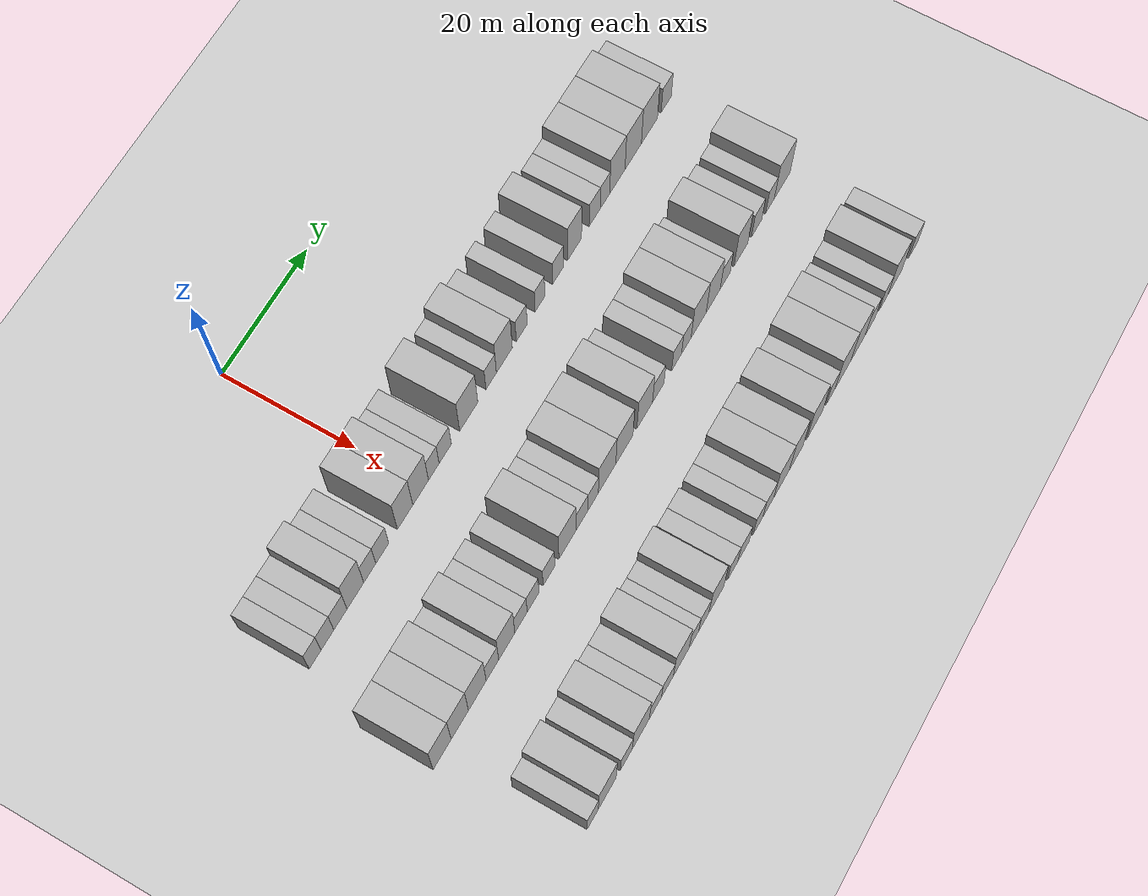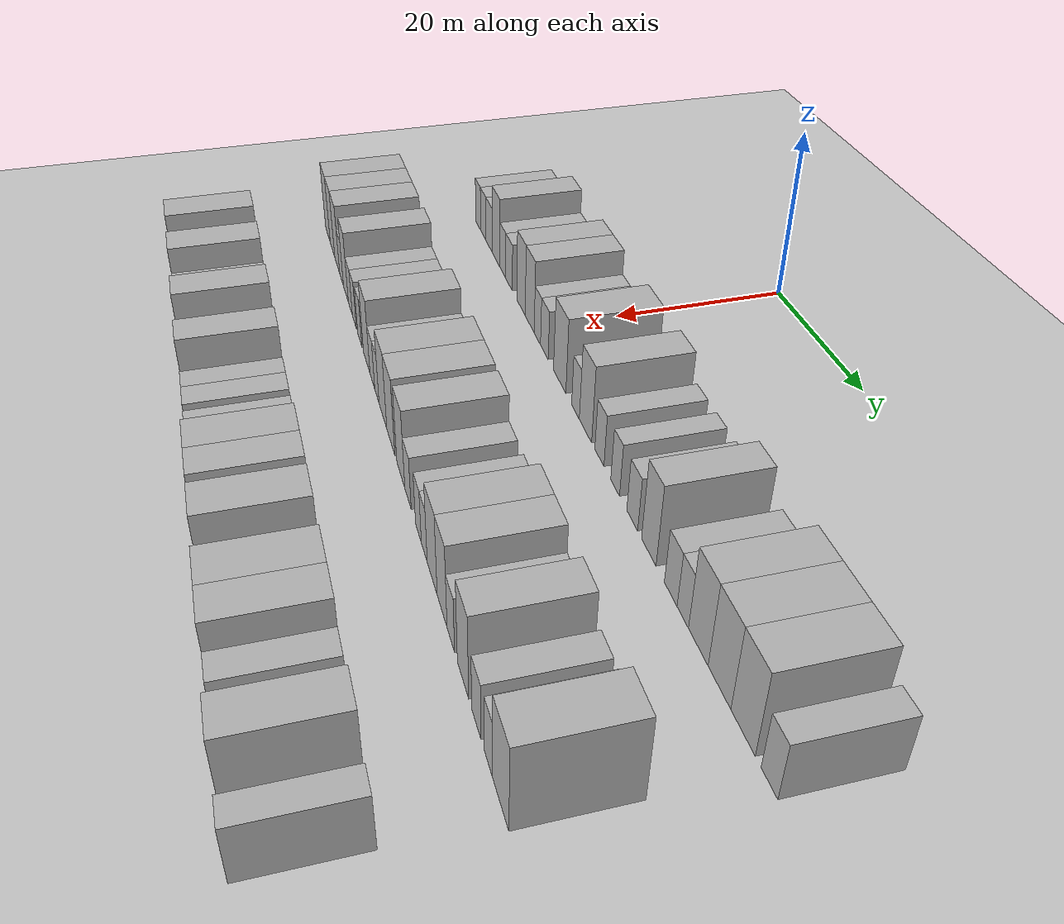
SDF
<sdf version="1.6">
 <world name="default">
  <include><name>ground_plane_1</name><uri>model://HANNAS_ground_plane</uri></include>
  <model name="building_80">
   <static>1</static>
   <pose>25.0000 -25.1136 0 0.000000 0.000000 0.000000</pose>
   <link name="link">
    <pose>0 0 3.00 0 0 0</pose>
    <collision name="collision"><geometry><box><size>10.0000 2.6231 6.0000</size></box></geometry></collision>
    <visual name="visual">
     <cast_shadows>0</cast_shadows>
     <geometry><box><size>10.0000 2.6231 6.0000</size></box></geometry>
     <material>
      <script>
       <uri>model://HANNAS_wall/materials/scripts</uri>
       <uri>model://HANNAS_wall/materials/textures</uri>
       <name>vrc/HANNAS_wall</name>
      </script>
     </material>
    </visual>
   </link>
  </model>
  <model name="building_81">
   <static>1</static>
   <pose>25.0000 -22.3759 0 0.000000 0.000000 0.000000</pose>
   <link name="link">
    <pose>0 0 3.00 0 0 0</pose>
    <collision name="collision"><geometry><box><size>10.0000 2.8523 6.0000</size></box></geometry></collision>
    <visual name="visual">
     <cast_shadows>0</cast_shadows>
     <geometry><box><size>10.0000 2.8523 6.0000</size></box></geometry>
     <material>
      <script>
       <uri>model://HANNAS_wall/materials/scripts</uri>
       <uri>model://HANNAS_wall/materials/textures</uri>
       <name>vrc/HANNAS_wall</name>
      </script>
     </material>
    </visual>
   </link>
  </model>
  <model name="building_82">
   <static>1</static>
   <pose>25.0000 -19.4616 0 0.000000 0.000000 0.000000</pose>
   <link name="link">
    <pose>0 0 3.00 0 0 0</pose>
    <collision name="collision"><geometry><box><size>10.0000 2.9764 6.0000</size></box></geometry></collision>
    <visual name="visual">
     <cast_shadows>0</cast_shadows>
     <geometry><box><size>10.0000 2.9764 6.0000</size></box></geometry>
     <material>
      <script>
       <uri>model://HANNAS_wall/materials/scripts</uri>
       <uri>model://HANNAS_wall/materials/textures</uri>
       <name>vrc/HANNAS_wall</name>
      </script>
     </material>
    </visual>
   </link>
  </model>
  <model name="building_83">
   <static>1</static>
   <pose>25.0000 -16.0742 0 0.000000 0.000000 0.000000</pose>
   <link name="link">
    <pose>0 0 4.50 0 0 0</pose>
    <collision name="collision"><geometry><box><size>10.0000 3.7984 9.0000</size></box></geometry></collision>
    <visual name="visual">
     <cast_shadows>0</cast_shadows>
     <geometry><box><size>10.0000 3.7984 9.0000</size></box></geometry>
     <material>
      <script>
       <uri>model://HANNAS_wall/materials/scripts</uri>
       <uri>model://HANNAS_wall/materials/textures</uri>
       <name>vrc/HANNAS_wall</name>
      </script>
     </material>
    </visual>
   </link>
  </model>
  <model name="building_84">
   <static>1</static>
   <pose>25.0000 -12.7927 0 0.000000 0.000000 0.000000</pose>
   <link name="link">
    <pose>0 0 3.00 0 0 0</pose>
    <collision name="collision"><geometry><box><size>10.0000 2.7646 6.0000</size></box></geometry></collision>
    <visual name="visual">
     <cast_shadows>0</cast_shadows>
     <geometry><box><size>10.0000 2.7646 6.0000</size></box></geometry>
     <material>
      <script>
       <uri>model://HANNAS_wall/materials/scripts</uri>
       <uri>model://HANNAS_wall/materials/textures</uri>
       <name>vrc/HANNAS_wall</name>
      </script>
     </material>
    </visual>
   </link>
  </model>
  <model name="building_85">
   <static>1</static>
   <pose>25.0000 -9.9157 0 0.000000 0.000000 0.000000</pose>
   <link name="link">
    <pose>0 0 3.00 0 0 0</pose>
    <collision name="collision"><geometry><box><size>10.0000 2.9894 6.0000</size></box></geometry></collision>
    <visual name="visual">
     <cast_shadows>0</cast_shadows>
     <geometry><box><size>10.0000 2.9894 6.0000</size></box></geometry>
     <material>
      <script>
       <uri>model://HANNAS_wall/materials/scripts</uri>
       <uri>model://HANNAS_wall/materials/textures</uri>
       <name>vrc/HANNAS_wall</name>
      </script>
     </material>
    </visual>
   </link>
  </model>
  <model name="building_86">
   <static>1</static>
   <pose>25.0000 -4.6189 0 0.000000 0.000000 0.000000</pose>
   <link name="link">
    <pose>0 0 4.50 0 0 0</pose>
    <collision name="collision"><geometry><box><size>10.0000 3.6042 9.0000</size></box></geometry></collision>
    <visual name="visual">
     <cast_shadows>0</cast_shadows>
     <geometry><box><size>10.0000 3.6042 9.0000</size></box></geometry>
     <material>
      <script>
       <uri>model://HANNAS_wall/materials/scripts</uri>
       <uri>model://HANNAS_wall/materials/textures</uri>
       <name>vrc/HANNAS_wall</name>
      </script>
     </material>
    </visual>
   </link>
  </model>
  <model name="building_87">
   <static>1</static>
   <pose>25.0000 -0.9588 0 0.000000 0.000000 0.000000</pose>
   <link name="link">
    <pose>0 0 4.50 0 0 0</pose>
    <collision name="collision"><geometry><box><size>10.0000 3.7160 9.0000</size></box></geometry></collision>
    <visual name="visual">
     <cast_shadows>0</cast_shadows>
     <geometry><box><size>10.0000 3.7160 9.0000</size></box></geometry>
     <material>
      <script>
       <uri>model://HANNAS_wall/materials/scripts</uri>
       <uri>model://HANNAS_wall/materials/textures</uri>
       <name>vrc/HANNAS_wall</name>
      </script>
     </material>
    </visual>
   </link>
  </model>
  <model name="building_88">
   <static>1</static>
   <pose>25.0000 2.1606 0 0.000000 0.000000 0.000000</pose>
   <link name="link">
    <pose>0 0 3.00 0 0 0</pose>
    <collision name="collision"><geometry><box><size>10.0000 2.5228 6.0000</size></box></geometry></collision>
    <visual name="visual">
     <cast_shadows>0</cast_shadows>
     <geometry><box><size>10.0000 2.5228 6.0000</size></box></geometry>
     <material>
      <script>
       <uri>model://HANNAS_wall/materials/scripts</uri>
       <uri>model://HANNAS_wall/materials/textures</uri>
       <name>vrc/HANNAS_wall</name>
      </script>
     </material>
    </visual>
   </link>
  </model>
  <model name="building_89">
   <static>1</static>
   <pose>25.0000 4.8927 0 0.000000 0.000000 0.000000</pose>
   <link name="link">
    <pose>0 0 3.00 0 0 0</pose>
    <collision name="collision"><geometry><box><size>10.0000 2.9413 6.0000</size></box></geometry></collision>
    <visual name="visual">
     <cast_shadows>0</cast_shadows>
     <geometry><box><size>10.0000 2.9413 6.0000</size></box></geometry>
     <material>
      <script>
       <uri>model://HANNAS_wall/materials/scripts</uri>
       <uri>model://HANNAS_wall/materials/textures</uri>
       <name>vrc/HANNAS_wall</name>
      </script>
     </material>
    </visual>
   </link>
  </model>
  <model name="building_90">
   <static>1</static>
   <pose>25.0000 10.5723 0 0.000000 0.000000 0.000000</pose>
   <link name="link">
    <pose>0 0 4.50 0 0 0</pose>
    <collision name="collision"><geometry><box><size>10.0000 4.4178 9.0000</size></box></geometry></collision>
    <visual name="visual">
     <cast_shadows>0</cast_shadows>
     <geometry><box><size>10.0000 4.4178 9.0000</size></box></geometry>
     <material>
      <script>
       <uri>model://HANNAS_wall/materials/scripts</uri>
       <uri>model://HANNAS_wall/materials/textures</uri>
       <name>vrc/HANNAS_wall</name>
      </script>
     </material>
    </visual>
   </link>
  </model>
  <model name="building_91">
   <static>1</static>
   <pose>25.0000 16.0663 0 0.000000 0.000000 0.000000</pose>
   <link name="link">
    <pose>0 0 3.00 0 0 0</pose>
    <collision name="collision"><geometry><box><size>10.0000 2.5703 6.0000</size></box></geometry></collision>
    <visual name="visual">
     <cast_shadows>0</cast_shadows>
     <geometry><box><size>10.0000 2.5703 6.0000</size></box></geometry>
     <material>
      <script>
       <uri>model://HANNAS_wall/materials/scripts</uri>
       <uri>model://HANNAS_wall/materials/textures</uri>
       <name>vrc/HANNAS_wall</name>
      </script>
     </material>
    </visual>
   </link>
  </model>
  <model name="building_92">
   <static>1</static>
   <pose>25.0000 19.3270 0 0.000000 0.000000 0.000000</pose>
   <link name="link">
    <pose>0 0 4.50 0 0 0</pose>
    <collision name="collision"><geometry><box><size>10.0000 3.9511 9.0000</size></box></geometry></collision>
    <visual name="visual">
     <cast_shadows>0</cast_shadows>
     <geometry><box><size>10.0000 3.9511 9.0000</size></box></geometry>
     <material>
      <script>
       <uri>model://HANNAS_wall/materials/scripts</uri>
       <uri>model://HANNAS_wall/materials/textures</uri>
       <name>vrc/HANNAS_wall</name>
      </script>
     </material>
    </visual>
   </link>
  </model>
  <model name="building_93">
   <static>1</static>
   <pose>25.0000 23.6728 0 0.000000 0.000000 0.000000</pose>
   <link name="link">
    <pose>0 0 3.00 0 0 0</pose>
    <collision name="collision"><geometry><box><size>10.0000 2.7406 6.0000</size></box></geometry></collision>
    <visual name="visual">
     <cast_shadows>0</cast_shadows>
     <geometry><box><size>10.0000 2.7406 6.0000</size></box></geometry>
     <material>
      <script>
       <uri>model://HANNAS_wall/materials/scripts</uri>
       <uri>model://HANNAS_wall/materials/textures</uri>
       <name>vrc/HANNAS_wall</name>
      </script>
     </material>
    </visual>
   </link>
  </model>
  <model name="building_94">
   <static>1</static>
   <pose>25.0000 28.2843 0 0.000000 0.000000 0.000000</pose>
   <link name="link">
    <pose>0 0 3.00 0 0 0</pose>
    <collision name="collision"><geometry><box><size>10.0000 2.4824 6.0000</size></box></geometry></collision>
    <visual name="visual">
     <cast_shadows>0</cast_shadows>
     <geometry><box><size>10.0000 2.4824 6.0000</size></box></geometry>
     <material>
      <script>
       <uri>model://HANNAS_wall/materials/scripts</uri>
       <uri>model://HANNAS_wall/materials/textures</uri>
       <name>vrc/HANNAS_wall</name>
      </script>
     </material>
    </visual>
   </link>
  </model>
  <model name="building_95">
   <static>1</static>
   <pose>25.0000 32.9653 0 0.000000 0.000000 0.000000</pose>
   <link name="link">
    <pose>0 0 3.00 0 0 0</pose>
    <collision name="collision"><geometry><box><size>10.0000 2.8797 6.0000</size></box></geometry></collision>
    <visual name="visual">
     <cast_shadows>0</cast_shadows>
     <geometry><box><size>10.0000 2.8797 6.0000</size></box></geometry>
     <material>
      <script>
       <uri>model://HANNAS_wall/materials/scripts</uri>
       <uri>model://HANNAS_wall/materials/textures</uri>
       <name>vrc/HANNAS_wall</name>
      </script>
     </material>
    </visual>
   </link>
  </model>
  <model name="building_96">
   <static>1</static>
   <pose>25.0000 37.2083 0 0.000000 0.000000 0.000000</pose>
   <link name="link">
    <pose>0 0 4.50 0 0 0</pose>
    <collision name="collision"><geometry><box><size>10.0000 3.6063 9.0000</size></box></geometry></collision>
    <visual name="visual">
     <cast_shadows>0</cast_shadows>
     <geometry><box><size>10.0000 3.6063 9.0000</size></box></geometry>
     <material>
      <script>
       <uri>model://HANNAS_wall/materials/scripts</uri>
       <uri>model://HANNAS_wall/materials/textures</uri>
       <name>vrc/HANNAS_wall</name>
      </script>
     </material>
    </visual>
   </link>
  </model>
  <model name="building_97">
   <static>1</static>
   <pose>25.0000 42.4687 0 0.000000 0.000000 0.000000</pose>
   <link name="link">
    <pose>0 0 3.00 0 0 0</pose>
    <collision name="collision"><geometry><box><size>10.0000 2.9145 6.0000</size></box></geometry></collision>
    <visual name="visual">
     <cast_shadows>0</cast_shadows>
     <geometry><box><size>10.0000 2.9145 6.0000</size></box></geometry>
     <material>
      <script>
       <uri>model://HANNAS_wall/materials/scripts</uri>
       <uri>model://HANNAS_wall/materials/textures</uri>
       <name>vrc/HANNAS_wall</name>
      </script>
     </material>
    </visual>
   </link>
  </model>
  <model name="building_98">
   <static>1</static>
   <pose>25.0000 45.1825 0 0.000000 0.000000 0.000000</pose>
   <link name="link">
    <pose>0 0 3.00 0 0 0</pose>
    <collision name="collision"><geometry><box><size>10.0000 2.5129 6.0000</size></box></geometry></collision>
    <visual name="visual">
     <cast_shadows>0</cast_shadows>
     <geometry><box><size>10.0000 2.5129 6.0000</size></box></geometry>
     <material>
      <script>
       <uri>model://HANNAS_wall/materials/scripts</uri>
       <uri>model://HANNAS_wall/materials/textures</uri>
       <name>vrc/HANNAS_wall</name>
      </script>
     </material>
    </visual>
   </link>
  </model>
  <model name="building_99">
   <static>1</static>
   <pose>25.0000 48.4916 0 0.000000 0.000000 0.000000</pose>
   <link name="link">
    <pose>0 0 4.50 0 0 0</pose>
    <collision name="collision"><geometry><box><size>10.0000 4.1053 9.0000</size></box></geometry></collision>
    <visual name="visual">
     <cast_shadows>0</cast_shadows>
     <geometry><box><size>10.0000 4.1053 9.0000</size></box></geometry>
     <material>
      <script>
       <uri>model://HANNAS_wall/materials/scripts</uri>
       <uri>model://HANNAS_wall/materials/textures</uri>
       <name>vrc/HANNAS_wall</name>
      </script>
     </material>
    </visual>
   </link>
  </model>
  <model name="building_100">
   <static>1</static>
   <pose>25.0000 52.7604 0 0.000000 0.000000 0.000000</pose>
   <link name="link">
    <pose>0 0 4.50 0 0 0</pose>
    <collision name="collision"><geometry><box><size>10.0000 4.4323 9.0000</size></box></geometry></collision>
    <visual name="visual">
     <cast_shadows>0</cast_shadows>
     <geometry><box><size>10.0000 4.4323 9.0000</size></box></geometry>
     <material>
      <script>
       <uri>model://HANNAS_wall/materials/scripts</uri>
       <uri>model://HANNAS_wall/materials/textures</uri>
       <name>vrc/HANNAS_wall</name>
      </script>
     </material>
    </visual>
   </link>
  </model>
  <model name="building_101">
   <static>1</static>
   <pose>25.0000 57.1780 0 0.000000 0.000000 0.000000</pose>
   <link name="link">
    <pose>0 0 4.50 0 0 0</pose>
    <collision name="collision"><geometry><box><size>10.0000 4.4029 9.0000</size></box></geometry></collision>
    <visual name="visual">
     <cast_shadows>0</cast_shadows>
     <geometry><box><size>10.0000 4.4029 9.0000</size></box></geometry>
     <material>
      <script>
       <uri>model://HANNAS_wall/materials/scripts</uri>
       <uri>model://HANNAS_wall/materials/textures</uri>
       <name>vrc/HANNAS_wall</name>
      </script>
     </material>
    </visual>
   </link>
  </model>
  <model name="building_102">
   <static>1</static>
   <pose>25.0000 61.7750 0 0.000000 0.000000 0.000000</pose>
   <link name="link">
    <pose>0 0 3.00 0 0 0</pose>
    <collision name="collision"><geometry><box><size>10.0000 2.7911 6.0000</size></box></geometry></collision>
    <visual name="visual">
     <cast_shadows>0</cast_shadows>
     <geometry><box><size>10.0000 2.7911 6.0000</size></box></geometry>
     <material>
      <script>
       <uri>model://HANNAS_wall/materials/scripts</uri>
       <uri>model://HANNAS_wall/materials/textures</uri>
       <name>vrc/HANNAS_wall</name>
      </script>
     </material>
    </visual>
   </link>
  </model>
  <model name="building_260">
   <static>1</static>
   <pose>44.0000 -27.3362 0 0.000000 0.000000 0.000000</pose>
   <link name="link">
    <pose>0 0 4.50 0 0 0</pose>
    <collision name="collision"><geometry><box><size>10.0000 4.0826 9.0000</size></box></geometry></collision>
    <visual name="visual">
     <cast_shadows>0</cast_shadows>
     <geometry><box><size>10.0000 4.0826 9.0000</size></box></geometry>
     <material>
      <script>
       <uri>model://HANNAS_wall/materials/scripts</uri>
       <uri>model://HANNAS_wall/materials/textures</uri>
       <name>vrc/HANNAS_wall</name>
      </script>
     </material>
    </visual>
   </link>
  </model>
  <model name="building_261">
   <static>1</static>
   <pose>44.0000 -23.3222 0 0.000000 0.000000 0.000000</pose>
   <link name="link">
    <pose>0 0 4.50 0 0 0</pose>
    <collision name="collision"><geometry><box><size>10.0000 3.9454 9.0000</size></box></geometry></collision>
    <visual name="visual">
     <cast_shadows>0</cast_shadows>
     <geometry><box><size>10.0000 3.9454 9.0000</size></box></geometry>
     <material>
      <script>
       <uri>model://HANNAS_wall/materials/scripts</uri>
       <uri>model://HANNAS_wall/materials/textures</uri>
       <name>vrc/HANNAS_wall</name>
      </script>
     </material>
    </visual>
   </link>
  </model>
  <model name="building_262">
   <static>1</static>
   <pose>44.0000 -19.3012 0 0.000000 0.000000 0.000000</pose>
   <link name="link">
    <pose>0 0 4.50 0 0 0</pose>
    <collision name="collision"><geometry><box><size>10.0000 4.0967 9.0000</size></box></geometry></collision>
    <visual name="visual">
     <cast_shadows>0</cast_shadows>
     <geometry><box><size>10.0000 4.0967 9.0000</size></box></geometry>
     <material>
      <script>
       <uri>model://HANNAS_wall/materials/scripts</uri>
       <uri>model://HANNAS_wall/materials/textures</uri>
       <name>vrc/HANNAS_wall</name>
      </script>
     </material>
    </visual>
   </link>
  </model>
  <model name="building_263">
   <static>1</static>
   <pose>44.0000 -15.7885 0 0.000000 0.000000 0.000000</pose>
   <link name="link">
    <pose>0 0 3.00 0 0 0</pose>
    <collision name="collision"><geometry><box><size>10.0000 2.9286 6.0000</size></box></geometry></collision>
    <visual name="visual">
     <cast_shadows>0</cast_shadows>
     <geometry><box><size>10.0000 2.9286 6.0000</size></box></geometry>
     <material>
      <script>
       <uri>model://HANNAS_wall/materials/scripts</uri>
       <uri>model://HANNAS_wall/materials/textures</uri>
       <name>vrc/HANNAS_wall</name>
      </script>
     </material>
    </visual>
   </link>
  </model>
  <model name="building_264">
   <static>1</static>
   <pose>44.0000 -12.4292 0 0.000000 0.000000 0.000000</pose>
   <link name="link">
    <pose>0 0 4.50 0 0 0</pose>
    <collision name="collision"><geometry><box><size>10.0000 3.7901 9.0000</size></box></geometry></collision>
    <visual name="visual">
     <cast_shadows>0</cast_shadows>
     <geometry><box><size>10.0000 3.7901 9.0000</size></box></geometry>
     <material>
      <script>
       <uri>model://HANNAS_wall/materials/scripts</uri>
       <uri>model://HANNAS_wall/materials/textures</uri>
       <name>vrc/HANNAS_wall</name>
      </script>
     </material>
    </visual>
   </link>
  </model>
  <model name="building_265">
   <static>1</static>
   <pose>44.0000 -9.0709 0 0.000000 0.000000 0.000000</pose>
   <link name="link">
    <pose>0 0 3.00 0 0 0</pose>
    <collision name="collision"><geometry><box><size>10.0000 2.9265 6.0000</size></box></geometry></collision>
    <visual name="visual">
     <cast_shadows>0</cast_shadows>
     <geometry><box><size>10.0000 2.9265 6.0000</size></box></geometry>
     <material>
      <script>
       <uri>model://HANNAS_wall/materials/scripts</uri>
       <uri>model://HANNAS_wall/materials/textures</uri>
       <name>vrc/HANNAS_wall</name>
      </script>
     </material>
    </visual>
   </link>
  </model>
  <model name="building_266">
   <static>1</static>
   <pose>44.0000 -6.1941 0 0.000000 0.000000 0.000000</pose>
   <link name="link">
    <pose>0 0 3.00 0 0 0</pose>
    <collision name="collision"><geometry><box><size>10.0000 2.8271 6.0000</size></box></geometry></collision>
    <visual name="visual">
     <cast_shadows>0</cast_shadows>
     <geometry><box><size>10.0000 2.8271 6.0000</size></box></geometry>
     <material>
      <script>
       <uri>model://HANNAS_wall/materials/scripts</uri>
       <uri>model://HANNAS_wall/materials/textures</uri>
       <name>vrc/HANNAS_wall</name>
      </script>
     </material>
    </visual>
   </link>
  </model>
  <model name="building_267">
   <static>1</static>
   <pose>44.0000 -2.3669 0 0.000000 0.000000 0.000000</pose>
   <link name="link">
    <pose>0 0 3.00 0 0 0</pose>
    <collision name="collision"><geometry><box><size>10.0000 2.8273 6.0000</size></box></geometry></collision>
    <visual name="visual">
     <cast_shadows>0</cast_shadows>
     <geometry><box><size>10.0000 2.8273 6.0000</size></box></geometry>
     <material>
      <script>
       <uri>model://HANNAS_wall/materials/scripts</uri>
       <uri>model://HANNAS_wall/materials/textures</uri>
       <name>vrc/HANNAS_wall</name>
      </script>
     </material>
    </visual>
   </link>
  </model>
  <model name="building_268">
   <static>1</static>
   <pose>44.0000 2.1466 0 0.000000 0.000000 0.000000</pose>
   <link name="link">
    <pose>0 0 4.50 0 0 0</pose>
    <collision name="collision"><geometry><box><size>10.0000 4.1997 9.0000</size></box></geometry></collision>
    <visual name="visual">
     <cast_shadows>0</cast_shadows>
     <geometry><box><size>10.0000 4.1997 9.0000</size></box></geometry>
     <material>
      <script>
       <uri>model://HANNAS_wall/materials/scripts</uri>
       <uri>model://HANNAS_wall/materials/textures</uri>
       <name>vrc/HANNAS_wall</name>
      </script>
     </material>
    </visual>
   </link>
  </model>
  <model name="building_269">
   <static>1</static>
   <pose>44.0000 5.7174 0 0.000000 0.000000 0.000000</pose>
   <link name="link">
    <pose>0 0 3.00 0 0 0</pose>
    <collision name="collision"><geometry><box><size>10.0000 2.9419 6.0000</size></box></geometry></collision>
    <visual name="visual">
     <cast_shadows>0</cast_shadows>
     <geometry><box><size>10.0000 2.9419 6.0000</size></box></geometry>
     <material>
      <script>
       <uri>model://HANNAS_wall/materials/scripts</uri>
       <uri>model://HANNAS_wall/materials/textures</uri>
       <name>vrc/HANNAS_wall</name>
      </script>
     </material>
    </visual>
   </link>
  </model>
  <model name="building_270">
   <static>1</static>
   <pose>44.0000 8.4803 0 0.000000 0.000000 0.000000</pose>
   <link name="link">
    <pose>0 0 3.00 0 0 0</pose>
    <collision name="collision"><geometry><box><size>10.0000 2.5839 6.0000</size></box></geometry></collision>
    <visual name="visual">
     <cast_shadows>0</cast_shadows>
     <geometry><box><size>10.0000 2.5839 6.0000</size></box></geometry>
     <material>
      <script>
       <uri>model://HANNAS_wall/materials/scripts</uri>
       <uri>model://HANNAS_wall/materials/textures</uri>
       <name>vrc/HANNAS_wall</name>
      </script>
     </material>
    </visual>
   </link>
  </model>
  <model name="building_271">
   <static>1</static>
   <pose>44.0000 11.9617 0 0.000000 0.000000 0.000000</pose>
   <link name="link">
    <pose>0 0 4.50 0 0 0</pose>
    <collision name="collision"><geometry><box><size>10.0000 4.3789 9.0000</size></box></geometry></collision>
    <visual name="visual">
     <cast_shadows>0</cast_shadows>
     <geometry><box><size>10.0000 4.3789 9.0000</size></box></geometry>
     <material>
      <script>
       <uri>model://HANNAS_wall/materials/scripts</uri>
       <uri>model://HANNAS_wall/materials/textures</uri>
       <name>vrc/HANNAS_wall</name>
      </script>
     </material>
    </visual>
   </link>
  </model>
  <model name="building_272">
   <static>1</static>
   <pose>44.0000 16.3287 0 0.000000 0.000000 0.000000</pose>
   <link name="link">
    <pose>0 0 4.50 0 0 0</pose>
    <collision name="collision"><geometry><box><size>10.0000 4.3550 9.0000</size></box></geometry></collision>
    <visual name="visual">
     <cast_shadows>0</cast_shadows>
     <geometry><box><size>10.0000 4.3550 9.0000</size></box></geometry>
     <material>
      <script>
       <uri>model://HANNAS_wall/materials/scripts</uri>
       <uri>model://HANNAS_wall/materials/textures</uri>
       <name>vrc/HANNAS_wall</name>
      </script>
     </material>
    </visual>
   </link>
  </model>
  <model name="building_273">
   <static>1</static>
   <pose>44.0000 21.5159 0 0.000000 0.000000 0.000000</pose>
   <link name="link">
    <pose>0 0 4.50 0 0 0</pose>
    <collision name="collision"><geometry><box><size>10.0000 4.0196 9.0000</size></box></geometry></collision>
    <visual name="visual">
     <cast_shadows>0</cast_shadows>
     <geometry><box><size>10.0000 4.0196 9.0000</size></box></geometry>
     <material>
      <script>
       <uri>model://HANNAS_wall/materials/scripts</uri>
       <uri>model://HANNAS_wall/materials/textures</uri>
       <name>vrc/HANNAS_wall</name>
      </script>
     </material>
    </visual>
   </link>
  </model>
  <model name="building_274">
   <static>1</static>
   <pose>44.0000 25.0243 0 0.000000 0.000000 0.000000</pose>
   <link name="link">
    <pose>0 0 3.00 0 0 0</pose>
    <collision name="collision"><geometry><box><size>10.0000 2.9971 6.0000</size></box></geometry></collision>
    <visual name="visual">
     <cast_shadows>0</cast_shadows>
     <geometry><box><size>10.0000 2.9971 6.0000</size></box></geometry>
     <material>
      <script>
       <uri>model://HANNAS_wall/materials/scripts</uri>
       <uri>model://HANNAS_wall/materials/textures</uri>
       <name>vrc/HANNAS_wall</name>
      </script>
     </material>
    </visual>
   </link>
  </model>
  <model name="building_275">
   <static>1</static>
   <pose>44.0000 29.8168 0 0.000000 0.000000 0.000000</pose>
   <link name="link">
    <pose>0 0 3.00 0 0 0</pose>
    <collision name="collision"><geometry><box><size>10.0000 2.5878 6.0000</size></box></geometry></collision>
    <visual name="visual">
     <cast_shadows>0</cast_shadows>
     <geometry><box><size>10.0000 2.5878 6.0000</size></box></geometry>
     <material>
      <script>
       <uri>model://HANNAS_wall/materials/scripts</uri>
       <uri>model://HANNAS_wall/materials/textures</uri>
       <name>vrc/HANNAS_wall</name>
      </script>
     </material>
    </visual>
   </link>
  </model>
  <model name="building_276">
   <static>1</static>
   <pose>44.0000 32.3701 0 0.000000 0.000000 0.000000</pose>
   <link name="link">
    <pose>0 0 3.00 0 0 0</pose>
    <collision name="collision"><geometry><box><size>10.0000 2.5187 6.0000</size></box></geometry></collision>
    <visual name="visual">
     <cast_shadows>0</cast_shadows>
     <geometry><box><size>10.0000 2.5187 6.0000</size></box></geometry>
     <material>
      <script>
       <uri>model://HANNAS_wall/materials/scripts</uri>
       <uri>model://HANNAS_wall/materials/textures</uri>
       <name>vrc/HANNAS_wall</name>
      </script>
     </material>
    </visual>
   </link>
  </model>
  <model name="building_277">
   <static>1</static>
   <pose>44.0000 35.6614 0 0.000000 0.000000 0.000000</pose>
   <link name="link">
    <pose>0 0 4.50 0 0 0</pose>
    <collision name="collision"><geometry><box><size>10.0000 4.0640 9.0000</size></box></geometry></collision>
    <visual name="visual">
     <cast_shadows>0</cast_shadows>
     <geometry><box><size>10.0000 4.0640 9.0000</size></box></geometry>
     <material>
      <script>
       <uri>model://HANNAS_wall/materials/scripts</uri>
       <uri>model://HANNAS_wall/materials/textures</uri>
       <name>vrc/HANNAS_wall</name>
      </script>
     </material>
    </visual>
   </link>
  </model>
  <model name="building_278">
   <static>1</static>
   <pose>44.0000 39.5808 0 0.000000 0.000000 0.000000</pose>
   <link name="link">
    <pose>0 0 4.50 0 0 0</pose>
    <collision name="collision"><geometry><box><size>10.0000 3.7749 9.0000</size></box></geometry></collision>
    <visual name="visual">
     <cast_shadows>0</cast_shadows>
     <geometry><box><size>10.0000 3.7749 9.0000</size></box></geometry>
     <material>
      <script>
       <uri>model://HANNAS_wall/materials/scripts</uri>
       <uri>model://HANNAS_wall/materials/textures</uri>
       <name>vrc/HANNAS_wall</name>
      </script>
     </material>
    </visual>
   </link>
  </model>
  <model name="building_279">
   <static>1</static>
   <pose>44.0000 42.8353 0 0.000000 0.000000 0.000000</pose>
   <link name="link">
    <pose>0 0 3.00 0 0 0</pose>
    <collision name="collision"><geometry><box><size>10.0000 2.7340 6.0000</size></box></geometry></collision>
    <visual name="visual">
     <cast_shadows>0</cast_shadows>
     <geometry><box><size>10.0000 2.7340 6.0000</size></box></geometry>
     <material>
      <script>
       <uri>model://HANNAS_wall/materials/scripts</uri>
       <uri>model://HANNAS_wall/materials/textures</uri>
       <name>vrc/HANNAS_wall</name>
      </script>
     </material>
    </visual>
   </link>
  </model>
  <model name="building_280">
   <static>1</static>
   <pose>44.0000 47.1238 0 0.000000 0.000000 0.000000</pose>
   <link name="link">
    <pose>0 0 4.50 0 0 0</pose>
    <collision name="collision"><geometry><box><size>10.0000 3.8430 9.0000</size></box></geometry></collision>
    <visual name="visual">
     <cast_shadows>0</cast_shadows>
     <geometry><box><size>10.0000 3.8430 9.0000</size></box></geometry>
     <material>
      <script>
       <uri>model://HANNAS_wall/materials/scripts</uri>
       <uri>model://HANNAS_wall/materials/textures</uri>
       <name>vrc/HANNAS_wall</name>
      </script>
     </material>
    </visual>
   </link>
  </model>
  <model name="building_281">
   <static>1</static>
   <pose>44.0000 51.4929 0 0.000000 0.000000 0.000000</pose>
   <link name="link">
    <pose>0 0 3.00 0 0 0</pose>
    <collision name="collision"><geometry><box><size>10.0000 2.8951 6.0000</size></box></geometry></collision>
    <visual name="visual">
     <cast_shadows>0</cast_shadows>
     <geometry><box><size>10.0000 2.8951 6.0000</size></box></geometry>
     <material>
      <script>
       <uri>model://HANNAS_wall/materials/scripts</uri>
       <uri>model://HANNAS_wall/materials/textures</uri>
       <name>vrc/HANNAS_wall</name>
      </script>
     </material>
    </visual>
   </link>
  </model>
  <model name="building_282">
   <static>1</static>
   <pose>44.0000 55.1789 0 0.000000 0.000000 0.000000</pose>
   <link name="link">
    <pose>0 0 3.00 0 0 0</pose>
    <collision name="collision"><geometry><box><size>10.0000 2.4768 6.0000</size></box></geometry></collision>
    <visual name="visual">
     <cast_shadows>0</cast_shadows>
     <geometry><box><size>10.0000 2.4768 6.0000</size></box></geometry>
     <material>
      <script>
       <uri>model://HANNAS_wall/materials/scripts</uri>
       <uri>model://HANNAS_wall/materials/textures</uri>
       <name>vrc/HANNAS_wall</name>
      </script>
     </material>
    </visual>
   </link>
  </model>
  <model name="building_283">
   <static>1</static>
   <pose>44.0000 58.6474 0 0.000000 0.000000 0.000000</pose>
   <link name="link">
    <pose>0 0 4.50 0 0 0</pose>
    <collision name="collision"><geometry><box><size>10.0000 4.4602 9.0000</size></box></geometry></collision>
    <visual name="visual">
     <cast_shadows>0</cast_shadows>
     <geometry><box><size>10.0000 4.4602 9.0000</size></box></geometry>
     <material>
      <script>
       <uri>model://HANNAS_wall/materials/scripts</uri>
       <uri>model://HANNAS_wall/materials/textures</uri>
       <name>vrc/HANNAS_wall</name>
      </script>
     </material>
    </visual>
   </link>
  </model>
  <model name="building_434">
   <static>1</static>
   <pose>63.0000 -25.2057 0 0.000000 0.000000 0.000000</pose>
   <link name="link">
    <pose>0 0 3.00 0 0 0</pose>
    <collision name="collision"><geometry><box><size>10.0000 2.5960 6.0000</size></box></geometry></collision>
    <visual name="visual">
     <cast_shadows>0</cast_shadows>
     <geometry><box><size>10.0000 2.5960 6.0000</size></box></geometry>
     <material>
      <script>
       <uri>model://HANNAS_wall/materials/scripts</uri>
       <uri>model://HANNAS_wall/materials/textures</uri>
       <name>vrc/HANNAS_wall</name>
      </script>
     </material>
    </visual>
   </link>
  </model>
  <model name="building_435">
   <static>1</static>
   <pose>63.0000 -21.8024 0 0.000000 0.000000 0.000000</pose>
   <link name="link">
    <pose>0 0 4.50 0 0 0</pose>
    <collision name="collision"><geometry><box><size>10.0000 4.2107 9.0000</size></box></geometry></collision>
    <visual name="visual">
     <cast_shadows>0</cast_shadows>
     <geometry><box><size>10.0000 4.2107 9.0000</size></box></geometry>
     <material>
      <script>
       <uri>model://HANNAS_wall/materials/scripts</uri>
       <uri>model://HANNAS_wall/materials/textures</uri>
       <name>vrc/HANNAS_wall</name>
      </script>
     </material>
    </visual>
   </link>
  </model>
  <model name="building_436">
   <static>1</static>
   <pose>63.0000 -17.2670 0 0.000000 0.000000 0.000000</pose>
   <link name="link">
    <pose>0 0 3.00 0 0 0</pose>
    <collision name="collision"><geometry><box><size>10.0000 2.8600 6.0000</size></box></geometry></collision>
    <visual name="visual">
     <cast_shadows>0</cast_shadows>
     <geometry><box><size>10.0000 2.8600 6.0000</size></box></geometry>
     <material>
      <script>
       <uri>model://HANNAS_wall/materials/scripts</uri>
       <uri>model://HANNAS_wall/materials/textures</uri>
       <name>vrc/HANNAS_wall</name>
      </script>
     </material>
    </visual>
   </link>
  </model>
  <model name="building_437">
   <static>1</static>
   <pose>63.0000 -13.7755 0 0.000000 0.000000 0.000000</pose>
   <link name="link">
    <pose>0 0 4.50 0 0 0</pose>
    <collision name="collision"><geometry><box><size>10.0000 4.1230 9.0000</size></box></geometry></collision>
    <visual name="visual">
     <cast_shadows>0</cast_shadows>
     <geometry><box><size>10.0000 4.1230 9.0000</size></box></geometry>
     <material>
      <script>
       <uri>model://HANNAS_wall/materials/scripts</uri>
       <uri>model://HANNAS_wall/materials/textures</uri>
       <name>vrc/HANNAS_wall</name>
      </script>
     </material>
    </visual>
   </link>
  </model>
  <model name="building_438">
   <static>1</static>
   <pose>63.0000 -10.2452 0 0.000000 0.000000 0.000000</pose>
   <link name="link">
    <pose>0 0 3.00 0 0 0</pose>
    <collision name="collision"><geometry><box><size>10.0000 2.9377 6.0000</size></box></geometry></collision>
    <visual name="visual">
     <cast_shadows>0</cast_shadows>
     <geometry><box><size>10.0000 2.9377 6.0000</size></box></geometry>
     <material>
      <script>
       <uri>model://HANNAS_wall/materials/scripts</uri>
       <uri>model://HANNAS_wall/materials/textures</uri>
       <name>vrc/HANNAS_wall</name>
      </script>
     </material>
    </visual>
   </link>
  </model>
  <model name="building_439">
   <static>1</static>
   <pose>63.0000 -7.3107 0 0.000000 0.000000 0.000000</pose>
   <link name="link">
    <pose>0 0 3.00 0 0 0</pose>
    <collision name="collision"><geometry><box><size>10.0000 2.9314 6.0000</size></box></geometry></collision>
    <visual name="visual">
     <cast_shadows>0</cast_shadows>
     <geometry><box><size>10.0000 2.9314 6.0000</size></box></geometry>
     <material>
      <script>
       <uri>model://HANNAS_wall/materials/scripts</uri>
       <uri>model://HANNAS_wall/materials/textures</uri>
       <name>vrc/HANNAS_wall</name>
      </script>
     </material>
    </visual>
   </link>
  </model>
  <model name="building_440">
   <static>1</static>
   <pose>63.0000 -3.8833 0 0.000000 0.000000 0.000000</pose>
   <link name="link">
    <pose>0 0 4.50 0 0 0</pose>
    <collision name="collision"><geometry><box><size>10.0000 3.9234 9.0000</size></box></geometry></collision>
    <visual name="visual">
     <cast_shadows>0</cast_shadows>
     <geometry><box><size>10.0000 3.9234 9.0000</size></box></geometry>
     <material>
      <script>
       <uri>model://HANNAS_wall/materials/scripts</uri>
       <uri>model://HANNAS_wall/materials/textures</uri>
       <name>vrc/HANNAS_wall</name>
      </script>
     </material>
    </visual>
   </link>
  </model>
  <model name="building_441">
   <static>1</static>
   <pose>63.0000 -0.7138 0 0.000000 0.000000 0.000000</pose>
   <link name="link">
    <pose>0 0 3.00 0 0 0</pose>
    <collision name="collision"><geometry><box><size>10.0000 2.4156 6.0000</size></box></geometry></collision>
    <visual name="visual">
     <cast_shadows>0</cast_shadows>
     <geometry><box><size>10.0000 2.4156 6.0000</size></box></geometry>
     <material>
      <script>
       <uri>model://HANNAS_wall/materials/scripts</uri>
       <uri>model://HANNAS_wall/materials/textures</uri>
       <name>vrc/HANNAS_wall</name>
      </script>
     </material>
    </visual>
   </link>
  </model>
  <model name="building_442">
   <static>1</static>
   <pose>63.0000 1.7585 0 0.000000 0.000000 0.000000</pose>
   <link name="link">
    <pose>0 0 3.00 0 0 0</pose>
    <collision name="collision"><geometry><box><size>10.0000 2.5289 6.0000</size></box></geometry></collision>
    <visual name="visual">
     <cast_shadows>0</cast_shadows>
     <geometry><box><size>10.0000 2.5289 6.0000</size></box></geometry>
     <material>
      <script>
       <uri>model://HANNAS_wall/materials/scripts</uri>
       <uri>model://HANNAS_wall/materials/textures</uri>
       <name>vrc/HANNAS_wall</name>
      </script>
     </material>
    </visual>
   </link>
  </model>
  <model name="building_443">
   <static>1</static>
   <pose>63.0000 4.9178 0 0.000000 0.000000 0.000000</pose>
   <link name="link">
    <pose>0 0 4.50 0 0 0</pose>
    <collision name="collision"><geometry><box><size>10.0000 3.7897 9.0000</size></box></geometry></collision>
    <visual name="visual">
     <cast_shadows>0</cast_shadows>
     <geometry><box><size>10.0000 3.7897 9.0000</size></box></geometry>
     <material>
      <script>
       <uri>model://HANNAS_wall/materials/scripts</uri>
       <uri>model://HANNAS_wall/materials/textures</uri>
       <name>vrc/HANNAS_wall</name>
      </script>
     </material>
    </visual>
   </link>
  </model>
  <model name="building_444">
   <static>1</static>
   <pose>63.0000 9.1336 0 0.000000 0.000000 0.000000</pose>
   <link name="link">
    <pose>0 0 3.00 0 0 0</pose>
    <collision name="collision"><geometry><box><size>10.0000 2.6420 6.0000</size></box></geometry></collision>
    <visual name="visual">
     <cast_shadows>0</cast_shadows>
     <geometry><box><size>10.0000 2.6420 6.0000</size></box></geometry>
     <material>
      <script>
       <uri>model://HANNAS_wall/materials/scripts</uri>
       <uri>model://HANNAS_wall/materials/textures</uri>
       <name>vrc/HANNAS_wall</name>
      </script>
     </material>
    </visual>
   </link>
  </model>
  <model name="building_445">
   <static>1</static>
   <pose>63.0000 11.9358 0 0.000000 0.000000 0.000000</pose>
   <link name="link">
    <pose>0 0 3.00 0 0 0</pose>
    <collision name="collision"><geometry><box><size>10.0000 2.9624 6.0000</size></box></geometry></collision>
    <visual name="visual">
     <cast_shadows>0</cast_shadows>
     <geometry><box><size>10.0000 2.9624 6.0000</size></box></geometry>
     <material>
      <script>
       <uri>model://HANNAS_wall/materials/scripts</uri>
       <uri>model://HANNAS_wall/materials/textures</uri>
       <name>vrc/HANNAS_wall</name>
      </script>
     </material>
    </visual>
   </link>
  </model>
  <model name="building_446">
   <static>1</static>
   <pose>63.0000 15.7001 0 0.000000 0.000000 0.000000</pose>
   <link name="link">
    <pose>0 0 3.00 0 0 0</pose>
    <collision name="collision"><geometry><box><size>10.0000 2.5662 6.0000</size></box></geometry></collision>
    <visual name="visual">
     <cast_shadows>0</cast_shadows>
     <geometry><box><size>10.0000 2.5662 6.0000</size></box></geometry>
     <material>
      <script>
       <uri>model://HANNAS_wall/materials/scripts</uri>
       <uri>model://HANNAS_wall/materials/textures</uri>
       <name>vrc/HANNAS_wall</name>
      </script>
     </material>
    </visual>
   </link>
  </model>
  <model name="building_447">
   <static>1</static>
   <pose>63.0000 18.4236 0 0.000000 0.000000 0.000000</pose>
   <link name="link">
    <pose>0 0 3.00 0 0 0</pose>
    <collision name="collision"><geometry><box><size>10.0000 2.8808 6.0000</size></box></geometry></collision>
    <visual name="visual">
     <cast_shadows>0</cast_shadows>
     <geometry><box><size>10.0000 2.8808 6.0000</size></box></geometry>
     <material>
      <script>
       <uri>model://HANNAS_wall/materials/scripts</uri>
       <uri>model://HANNAS_wall/materials/textures</uri>
       <name>vrc/HANNAS_wall</name>
      </script>
     </material>
    </visual>
   </link>
  </model>
  <model name="building_448">
   <static>1</static>
   <pose>63.0000 21.9294 0 0.000000 0.000000 0.000000</pose>
   <link name="link">
    <pose>0 0 4.50 0 0 0</pose>
    <collision name="collision"><geometry><box><size>10.0000 4.1309 9.0000</size></box></geometry></collision>
    <visual name="visual">
     <cast_shadows>0</cast_shadows>
     <geometry><box><size>10.0000 4.1309 9.0000</size></box></geometry>
     <material>
      <script>
       <uri>model://HANNAS_wall/materials/scripts</uri>
       <uri>model://HANNAS_wall/materials/textures</uri>
       <name>vrc/HANNAS_wall</name>
      </script>
     </material>
    </visual>
   </link>
  </model>
  <model name="building_449">
   <static>1</static>
   <pose>63.0000 25.8467 0 0.000000 0.000000 0.000000</pose>
   <link name="link">
    <pose>0 0 4.50 0 0 0</pose>
    <collision name="collision"><geometry><box><size>10.0000 3.7036 9.0000</size></box></geometry></collision>
    <visual name="visual">
     <cast_shadows>0</cast_shadows>
     <geometry><box><size>10.0000 3.7036 9.0000</size></box></geometry>
     <material>
      <script>
       <uri>model://HANNAS_wall/materials/scripts</uri>
       <uri>model://HANNAS_wall/materials/textures</uri>
       <name>vrc/HANNAS_wall</name>
      </script>
     </material>
    </visual>
   </link>
  </model>
  <model name="building_450">
   <static>1</static>
   <pose>63.0000 30.8493 0 0.000000 0.000000 0.000000</pose>
   <link name="link">
    <pose>0 0 4.50 0 0 0</pose>
    <collision name="collision"><geometry><box><size>10.0000 4.3016 9.0000</size></box></geometry></collision>
    <visual name="visual">
     <cast_shadows>0</cast_shadows>
     <geometry><box><size>10.0000 4.3016 9.0000</size></box></geometry>
     <material>
      <script>
       <uri>model://HANNAS_wall/materials/scripts</uri>
       <uri>model://HANNAS_wall/materials/textures</uri>
       <name>vrc/HANNAS_wall</name>
      </script>
     </material>
    </visual>
   </link>
  </model>
  <model name="building_451">
   <static>1</static>
   <pose>63.0000 35.2560 0 0.000000 0.000000 0.000000</pose>
   <link name="link">
    <pose>0 0 3.00 0 0 0</pose>
    <collision name="collision"><geometry><box><size>10.0000 2.5118 6.0000</size></box></geometry></collision>
    <visual name="visual">
     <cast_shadows>0</cast_shadows>
     <geometry><box><size>10.0000 2.5118 6.0000</size></box></geometry>
     <material>
      <script>
       <uri>model://HANNAS_wall/materials/scripts</uri>
       <uri>model://HANNAS_wall/materials/textures</uri>
       <name>vrc/HANNAS_wall</name>
      </script>
     </material>
    </visual>
   </link>
  </model>
  <model name="building_452">
   <static>1</static>
   <pose>63.0000 38.7018 0 0.000000 0.000000 0.000000</pose>
   <link name="link">
    <pose>0 0 4.50 0 0 0</pose>
    <collision name="collision"><geometry><box><size>10.0000 4.3797 9.0000</size></box></geometry></collision>
    <visual name="visual">
     <cast_shadows>0</cast_shadows>
     <geometry><box><size>10.0000 4.3797 9.0000</size></box></geometry>
     <material>
      <script>
       <uri>model://HANNAS_wall/materials/scripts</uri>
       <uri>model://HANNAS_wall/materials/textures</uri>
       <name>vrc/HANNAS_wall</name>
      </script>
     </material>
    </visual>
   </link>
  </model>
  <model name="building_453">
   <static>1</static>
   <pose>63.0000 42.8533 0 0.000000 0.000000 0.000000</pose>
   <link name="link">
    <pose>0 0 4.50 0 0 0</pose>
    <collision name="collision"><geometry><box><size>10.0000 3.9233 9.0000</size></box></geometry></collision>
    <visual name="visual">
     <cast_shadows>0</cast_shadows>
     <geometry><box><size>10.0000 3.9233 9.0000</size></box></geometry>
     <material>
      <script>
       <uri>model://HANNAS_wall/materials/scripts</uri>
       <uri>model://HANNAS_wall/materials/textures</uri>
       <name>vrc/HANNAS_wall</name>
      </script>
     </material>
    </visual>
   </link>
  </model>
  <model name="building_454">
   <static>1</static>
   <pose>63.0000 46.2962 0 0.000000 0.000000 0.000000</pose>
   <link name="link">
    <pose>0 0 3.00 0 0 0</pose>
    <collision name="collision"><geometry><box><size>10.0000 2.9625 6.0000</size></box></geometry></collision>
    <visual name="visual">
     <cast_shadows>0</cast_shadows>
     <geometry><box><size>10.0000 2.9625 6.0000</size></box></geometry>
     <material>
      <script>
       <uri>model://HANNAS_wall/materials/scripts</uri>
       <uri>model://HANNAS_wall/materials/textures</uri>
       <name>vrc/HANNAS_wall</name>
      </script>
     </material>
    </visual>
   </link>
  </model>
  <model name="building_455">
   <static>1</static>
   <pose>63.0000 50.0409 0 0.000000 0.000000 0.000000</pose>
   <link name="link">
    <pose>0 0 3.00 0 0 0</pose>
    <collision name="collision"><geometry><box><size>10.0000 2.5269 6.0000</size></box></geometry></collision>
    <visual name="visual">
     <cast_shadows>0</cast_shadows>
     <geometry><box><size>10.0000 2.5269 6.0000</size></box></geometry>
     <material>
      <script>
       <uri>model://HANNAS_wall/materials/scripts</uri>
       <uri>model://HANNAS_wall/materials/textures</uri>
       <name>vrc/HANNAS_wall</name>
      </script>
     </material>
    </visual>
   </link>
  </model>
  <model name="building_456">
   <static>1</static>
   <pose>63.0000 53.3402 0 0.000000 0.000000 0.000000</pose>
   <link name="link">
    <pose>0 0 4.50 0 0 0</pose>
    <collision name="collision"><geometry><box><size>10.0000 4.0716 9.0000</size></box></geometry></collision>
    <visual name="visual">
     <cast_shadows>0</cast_shadows>
     <geometry><box><size>10.0000 4.0716 9.0000</size></box></geometry>
     <material>
      <script>
       <uri>model://HANNAS_wall/materials/scripts</uri>
       <uri>model://HANNAS_wall/materials/textures</uri>
       <name>vrc/HANNAS_wall</name>
      </script>
     </material>
    </visual>
   </link>
  </model>
  <model name="building_457">
   <static>1</static>
   <pose>63.0000 58.7051 0 0.000000 0.000000 0.000000</pose>
   <link name="link">
    <pose>0 0 3.00 0 0 0</pose>
    <collision name="collision"><geometry><box><size>10.0000 2.6583 6.0000</size></box></geometry></collision>
    <visual name="visual">
     <cast_shadows>0</cast_shadows>
     <geometry><box><size>10.0000 2.6583 6.0000</size></box></geometry>
     <material>
      <script>
       <uri>model://HANNAS_wall/materials/scripts</uri>
       <uri>model://HANNAS_wall/materials/textures</uri>
       <name>vrc/HANNAS_wall</name>
      </script>
     </material>
    </visual>
   </link>
  </model>
 </world>
</sdf>
